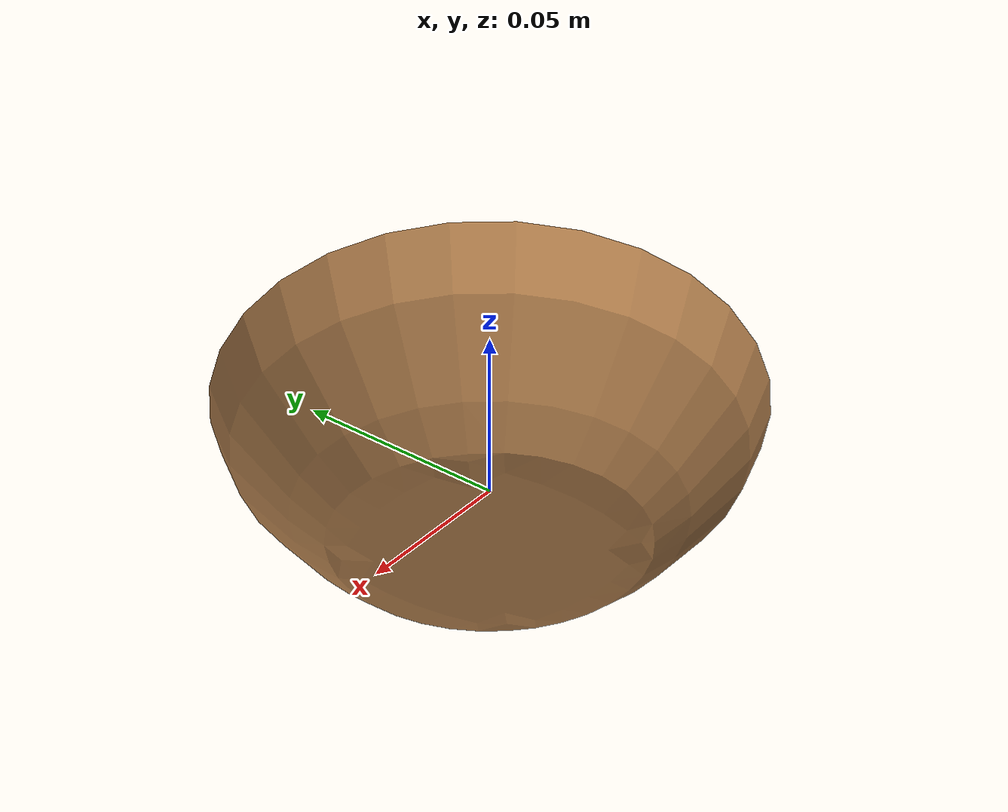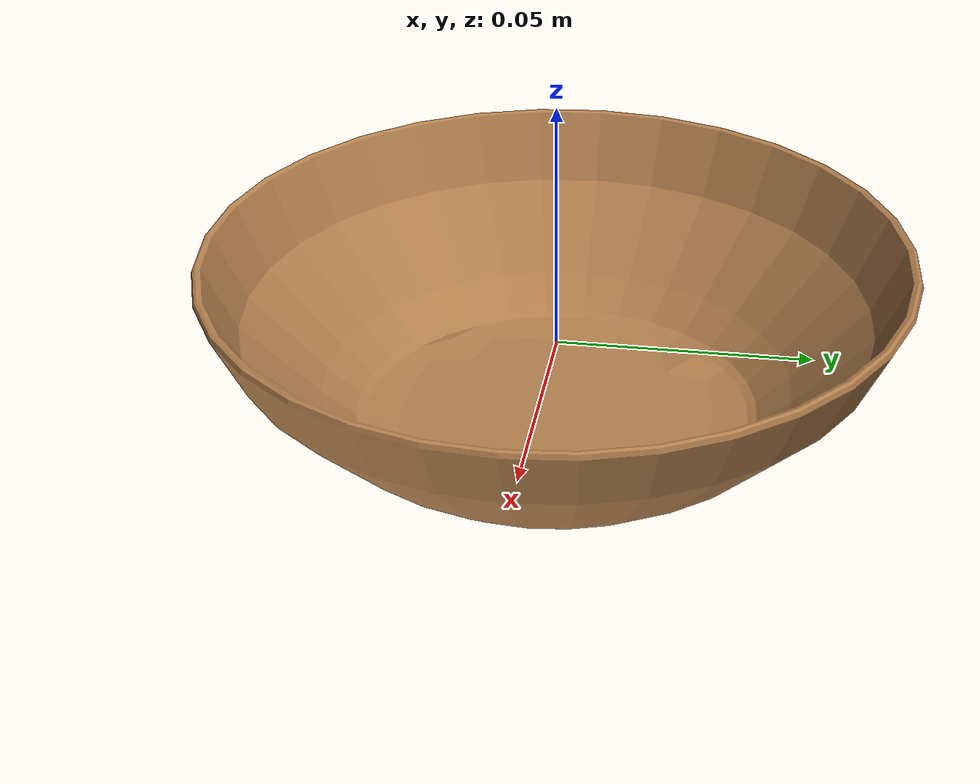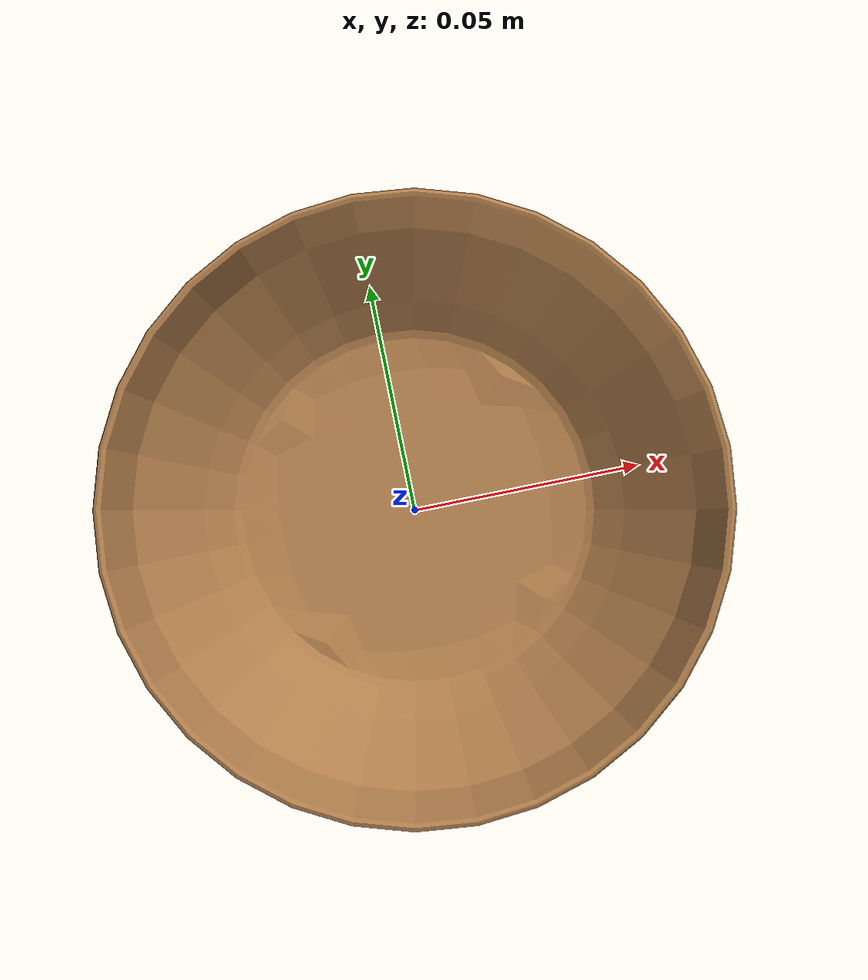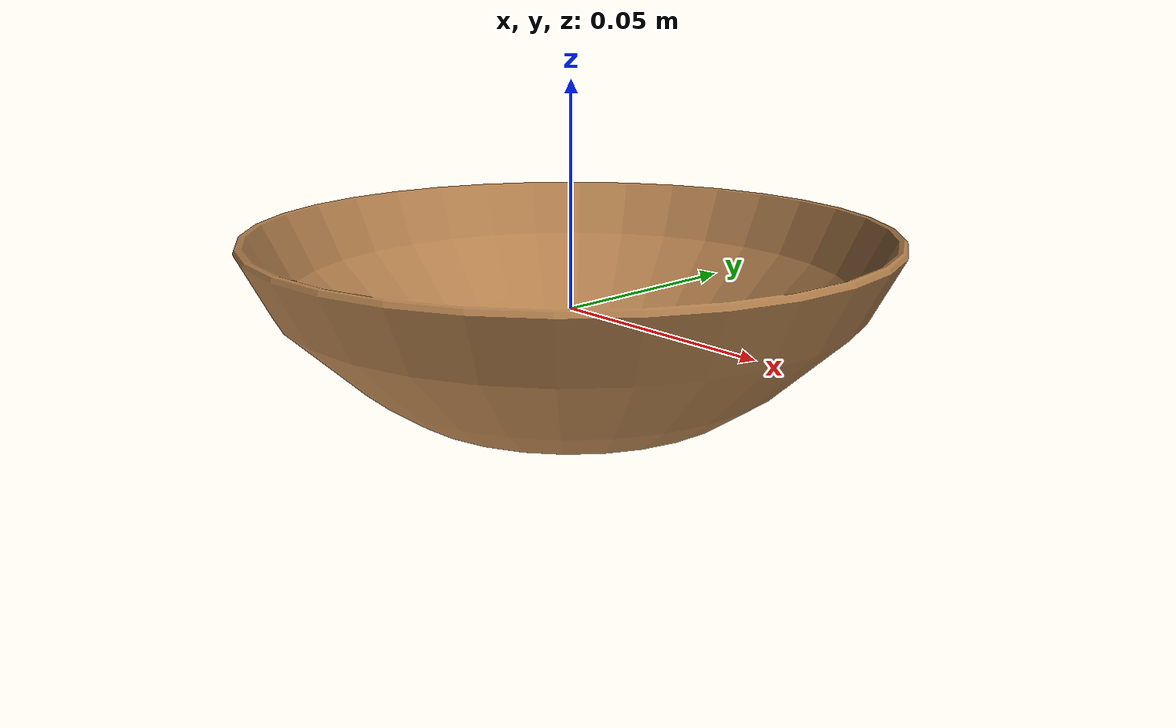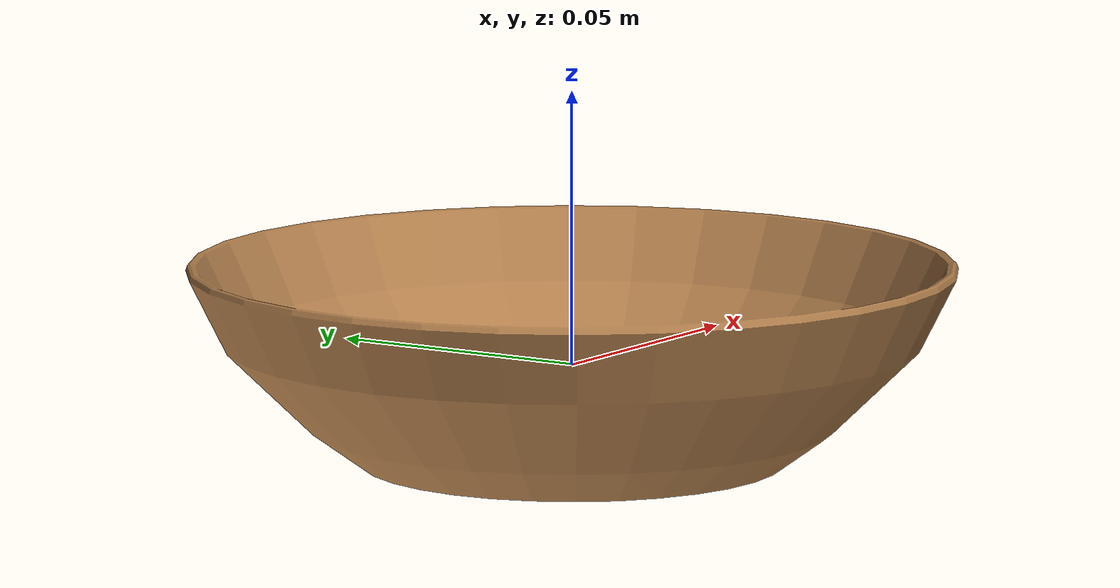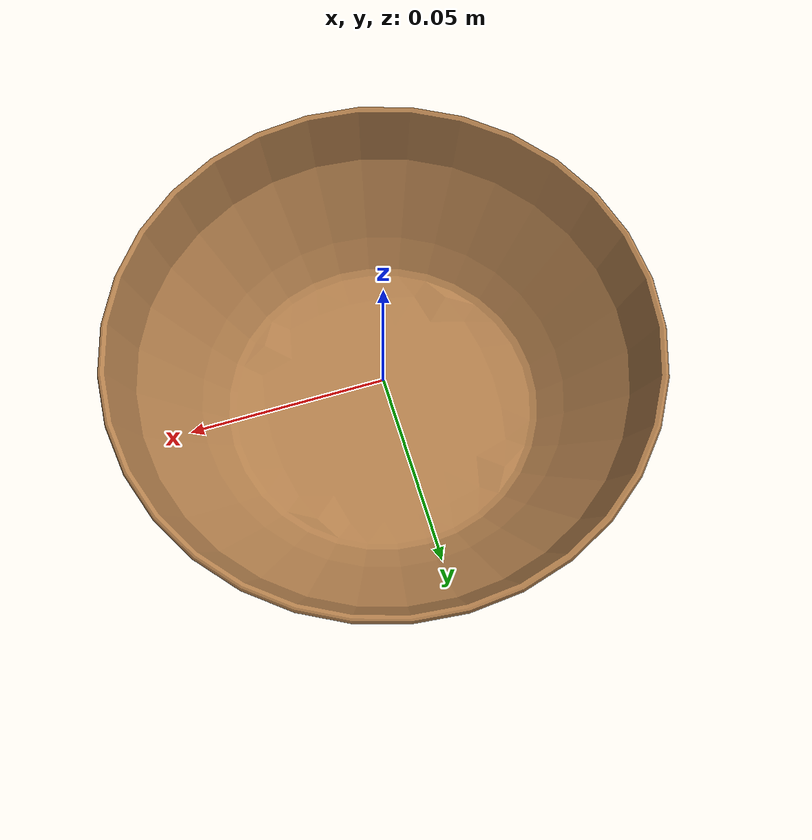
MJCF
<mujoco model="bowl_22">
  <asset>
    <mesh file="visual/model_normalized_0.obj" name="model_normalized_0_vis" scale="0.13999999999999996 0.13999999999999996 0.13999999999999996" refquat="1.0 0.0 0.0 0.0"/>
    <mesh file="collision/model_normalized_collision_22.obj" name="model_normalized_collision_22._coll" scale="0.13999999999999996 0.13999999999999996 0.13999999999999996" refquat="1.0 0.0 0.0 0.0"/>
    <mesh file="collision/model_normalized_collision_23.obj" name="model_normalized_collision_23._coll" scale="0.13999999999999996 0.13999999999999996 0.13999999999999996" refquat="1.0 0.0 0.0 0.0"/>
    <mesh file="collision/model_normalized_collision_21.obj" name="model_normalized_collision_21._coll" scale="0.13999999999999996 0.13999999999999996 0.13999999999999996" refquat="1.0 0.0 0.0 0.0"/>
    <mesh file="collision/model_normalized_collision_20.obj" name="model_normalized_collision_20._coll" scale="0.13999999999999996 0.13999999999999996 0.13999999999999996" refquat="1.0 0.0 0.0 0.0"/>
    <mesh file="collision/model_normalized_collision_24.obj" name="model_normalized_collision_24._coll" scale="0.13999999999999996 0.13999999999999996 0.13999999999999996" refquat="1.0 0.0 0.0 0.0"/>
    <mesh file="collision/model_normalized_collision_30.obj" name="model_normalized_collision_30._coll" scale="0.13999999999999996 0.13999999999999996 0.13999999999999996" refquat="1.0 0.0 0.0 0.0"/>
    <mesh file="collision/model_normalized_collision_18.obj" name="model_normalized_collision_18._coll" scale="0.13999999999999996 0.13999999999999996 0.13999999999999996" refquat="1.0 0.0 0.0 0.0"/>
    <mesh file="collision/model_normalized_collision_19.obj" name="model_normalized_collision_19._coll" scale="0.13999999999999996 0.13999999999999996 0.13999999999999996" refquat="1.0 0.0 0.0 0.0"/>
    <mesh file="collision/model_normalized_collision_31.obj" name="model_normalized_collision_31._coll" scale="0.13999999999999996 0.13999999999999996 0.13999999999999996" refquat="1.0 0.0 0.0 0.0"/>
    <mesh file="collision/model_normalized_collision_25.obj" name="model_normalized_collision_25._coll" scale="0.13999999999999996 0.13999999999999996 0.13999999999999996" refquat="1.0 0.0 0.0 0.0"/>
    <mesh file="collision/model_normalized_collision_27.obj" name="model_normalized_collision_27._coll" scale="0.13999999999999996 0.13999999999999996 0.13999999999999996" refquat="1.0 0.0 0.0 0.0"/>
    <mesh file="collision/model_normalized_collision_26.obj" name="model_normalized_collision_26._coll" scale="0.13999999999999996 0.13999999999999996 0.13999999999999996" refquat="1.0 0.0 0.0 0.0"/>
    <mesh file="collision/model_normalized_collision_9.obj" name="model_normalized_collision_9._coll" scale="0.13999999999999996 0.13999999999999996 0.13999999999999996" refquat="1.0 0.0 0.0 0.0"/>
    <mesh file="collision/model_normalized_collision_8.obj" name="model_normalized_collision_8._coll" scale="0.13999999999999996 0.13999999999999996 0.13999999999999996" refquat="1.0 0.0 0.0 0.0"/>
    <mesh file="collision/model_normalized_collision_6.obj" name="model_normalized_collision_6._coll" scale="0.13999999999999996 0.13999999999999996 0.13999999999999996" refquat="1.0 0.0 0.0 0.0"/>
    <mesh file="collision/model_normalized_collision_7.obj" name="model_normalized_collision_7._coll" scale="0.13999999999999996 0.13999999999999996 0.13999999999999996" refquat="1.0 0.0 0.0 0.0"/>
    <mesh file="collision/model_normalized_collision_5.obj" name="model_normalized_collision_5._coll" scale="0.13999999999999996 0.13999999999999996 0.13999999999999996" refquat="1.0 0.0 0.0 0.0"/>
    <mesh file="collision/model_normalized_collision_4.obj" name="model_normalized_collision_4._coll" scale="0.13999999999999996 0.13999999999999996 0.13999999999999996" refquat="1.0 0.0 0.0 0.0"/>
    <mesh file="collision/model_normalized_collision_0.obj" name="model_normalized_collision_0._coll" scale="0.13999999999999996 0.13999999999999996 0.13999999999999996" refquat="1.0 0.0 0.0 0.0"/>
    <mesh file="collision/model_normalized_collision_1.obj" name="model_normalized_collision_1._coll" scale="0.13999999999999996 0.13999999999999996 0.13999999999999996" refquat="1.0 0.0 0.0 0.0"/>
    <mesh file="collision/model_normalized_collision_3.obj" name="model_normalized_collision_3._coll" scale="0.13999999999999996 0.13999999999999996 0.13999999999999996" refquat="1.0 0.0 0.0 0.0"/>
    <mesh file="collision/model_normalized_collision_2.obj" name="model_normalized_collision_2._coll" scale="0.13999999999999996 0.13999999999999996 0.13999999999999996" refquat="1.0 0.0 0.0 0.0"/>
    <mesh file="collision/model_normalized_collision_17.obj" name="model_normalized_collision_17._coll" scale="0.13999999999999996 0.13999999999999996 0.13999999999999996" refquat="1.0 0.0 0.0 0.0"/>
    <mesh file="collision/model_normalized_collision_16.obj" name="model_normalized_collision_16._coll" scale="0.13999999999999996 0.13999999999999996 0.13999999999999996" refquat="1.0 0.0 0.0 0.0"/>
    <mesh file="collision/model_normalized_collision_28.obj" name="model_normalized_collision_28._coll" scale="0.13999999999999996 0.13999999999999996 0.13999999999999996" refquat="1.0 0.0 0.0 0.0"/>
    <mesh file="collision/model_normalized_collision_14.obj" name="model_normalized_collision_14._coll" scale="0.13999999999999996 0.13999999999999996 0.13999999999999996" refquat="1.0 0.0 0.0 0.0"/>
    <mesh file="collision/model_normalized_collision_15.obj" name="model_normalized_collision_15._coll" scale="0.13999999999999996 0.13999999999999996 0.13999999999999996" refquat="1.0 0.0 0.0 0.0"/>
    <mesh file="collision/model_normalized_collision_29.obj" name="model_normalized_collision_29._coll" scale="0.13999999999999996 0.13999999999999996 0.13999999999999996" refquat="1.0 0.0 0.0 0.0"/>
    <mesh file="collision/model_normalized_collision_11.obj" name="model_normalized_collision_11._coll" scale="0.13999999999999996 0.13999999999999996 0.13999999999999996" refquat="1.0 0.0 0.0 0.0"/>
    <mesh file="collision/model_normalized_collision_10.obj" name="model_normalized_collision_10._coll" scale="0.13999999999999996 0.13999999999999996 0.13999999999999996" refquat="1.0 0.0 0.0 0.0"/>
    <mesh file="collision/model_normalized_collision_12.obj" name="model_normalized_collision_12._coll" scale="0.13999999999999996 0.13999999999999996 0.13999999999999996" refquat="1.0 0.0 0.0 0.0"/>
    <mesh file="collision/model_normalized_collision_13.obj" name="model_normalized_collision_13._coll" scale="0.13999999999999996 0.13999999999999996 0.13999999999999996" refquat="1.0 0.0 0.0 0.0"/>
    <texture type="2d" name="image0" file="visual/image0.png"/>
    <material name="Wood" texture="image0" specular="0.5" shininess="0.25"/>
  </asset>
  <worldbody>
  <body>
      <body name="object">
        <geom solimp="0.998 0.998 0.001" solref="0.001 1" density="100" friction="0.95 0.3 0.1" type="mesh" mesh="model_normalized_0_vis" conaffinity="0" contype="0" group="1" material="Wood"/>
        <geom solimp="0.998 0.998 0.001" solref="0.001 1" density="100" friction="0.95 0.3 0.1" type="mesh" mesh="model_normalized_collision_22._coll" group="0" rgba="0.8 0.8 0.8 0.0"/>
        <geom solimp="0.998 0.998 0.001" solref="0.001 1" density="100" friction="0.95 0.3 0.1" type="mesh" mesh="model_normalized_collision_23._coll" group="0" rgba="0.8 0.8 0.8 0.0"/>
        <geom solimp="0.998 0.998 0.001" solref="0.001 1" density="100" friction="0.95 0.3 0.1" type="mesh" mesh="model_normalized_collision_21._coll" group="0" rgba="0.8 0.8 0.8 0.0"/>
        <geom solimp="0.998 0.998 0.001" solref="0.001 1" density="100" friction="0.95 0.3 0.1" type="mesh" mesh="model_normalized_collision_20._coll" group="0" rgba="0.8 0.8 0.8 0.0"/>
        <geom solimp="0.998 0.998 0.001" solref="0.001 1" density="100" friction="0.95 0.3 0.1" type="mesh" mesh="model_normalized_collision_24._coll" group="0" rgba="0.8 0.8 0.8 0.0"/>
        <geom solimp="0.998 0.998 0.001" solref="0.001 1" density="100" friction="0.95 0.3 0.1" type="mesh" mesh="model_normalized_collision_30._coll" group="0" rgba="0.8 0.8 0.8 0.0"/>
        <geom solimp="0.998 0.998 0.001" solref="0.001 1" density="100" friction="0.95 0.3 0.1" type="mesh" mesh="model_normalized_collision_18._coll" group="0" rgba="0.8 0.8 0.8 0.0"/>
        <geom solimp="0.998 0.998 0.001" solref="0.001 1" density="100" friction="0.95 0.3 0.1" type="mesh" mesh="model_normalized_collision_19._coll" group="0" rgba="0.8 0.8 0.8 0.0"/>
        <geom solimp="0.998 0.998 0.001" solref="0.001 1" density="100" friction="0.95 0.3 0.1" type="mesh" mesh="model_normalized_collision_31._coll" group="0" rgba="0.8 0.8 0.8 0.0"/>
        <geom solimp="0.998 0.998 0.001" solref="0.001 1" density="100" friction="0.95 0.3 0.1" type="mesh" mesh="model_normalized_collision_25._coll" group="0" rgba="0.8 0.8 0.8 0.0"/>
        <geom solimp="0.998 0.998 0.001" solref="0.001 1" density="100" friction="0.95 0.3 0.1" type="mesh" mesh="model_normalized_collision_27._coll" group="0" rgba="0.8 0.8 0.8 0.0"/>
        <geom solimp="0.998 0.998 0.001" solref="0.001 1" density="100" friction="0.95 0.3 0.1" type="mesh" mesh="model_normalized_collision_26._coll" group="0" rgba="0.8 0.8 0.8 0.0"/>
        <geom solimp="0.998 0.998 0.001" solref="0.001 1" density="100" friction="0.95 0.3 0.1" type="mesh" mesh="model_normalized_collision_9._coll" group="0" rgba="0.8 0.8 0.8 0.0"/>
        <geom solimp="0.998 0.998 0.001" solref="0.001 1" density="100" friction="0.95 0.3 0.1" type="mesh" mesh="model_normalized_collision_8._coll" group="0" rgba="0.8 0.8 0.8 0.0"/>
        <geom solimp="0.998 0.998 0.001" solref="0.001 1" density="100" friction="0.95 0.3 0.1" type="mesh" mesh="model_normalized_collision_6._coll" group="0" rgba="0.8 0.8 0.8 0.0"/>
        <geom solimp="0.998 0.998 0.001" solref="0.001 1" density="100" friction="0.95 0.3 0.1" type="mesh" mesh="model_normalized_collision_7._coll" group="0" rgba="0.8 0.8 0.8 0.0"/>
        <geom solimp="0.998 0.998 0.001" solref="0.001 1" density="100" friction="0.95 0.3 0.1" type="mesh" mesh="model_normalized_collision_5._coll" group="0" rgba="0.8 0.8 0.8 0.0"/>
        <geom solimp="0.998 0.998 0.001" solref="0.001 1" density="100" friction="0.95 0.3 0.1" type="mesh" mesh="model_normalized_collision_4._coll" group="0" rgba="0.8 0.8 0.8 0.0"/>
        <geom solimp="0.998 0.998 0.001" solref="0.001 1" density="100" friction="0.95 0.3 0.1" type="mesh" mesh="model_normalized_collision_0._coll" group="0" rgba="0.8 0.8 0.8 0.0"/>
        <geom solimp="0.998 0.998 0.001" solref="0.001 1" density="100" friction="0.95 0.3 0.1" type="mesh" mesh="model_normalized_collision_1._coll" group="0" rgba="0.8 0.8 0.8 0.0"/>
        <geom solimp="0.998 0.998 0.001" solref="0.001 1" density="100" friction="0.95 0.3 0.1" type="mesh" mesh="model_normalized_collision_3._coll" group="0" rgba="0.8 0.8 0.8 0.0"/>
        <geom solimp="0.998 0.998 0.001" solref="0.001 1" density="100" friction="0.95 0.3 0.1" type="mesh" mesh="model_normalized_collision_2._coll" group="0" rgba="0.8 0.8 0.8 0.0"/>
        <geom solimp="0.998 0.998 0.001" solref="0.001 1" density="100" friction="0.95 0.3 0.1" type="mesh" mesh="model_normalized_collision_17._coll" group="0" rgba="0.8 0.8 0.8 0.0"/>
        <geom solimp="0.998 0.998 0.001" solref="0.001 1" density="100" friction="0.95 0.3 0.1" type="mesh" mesh="model_normalized_collision_16._coll" group="0" rgba="0.8 0.8 0.8 0.0"/>
        <geom solimp="0.998 0.998 0.001" solref="0.001 1" density="100" friction="0.95 0.3 0.1" type="mesh" mesh="model_normalized_collision_28._coll" group="0" rgba="0.8 0.8 0.8 0.0"/>
        <geom solimp="0.998 0.998 0.001" solref="0.001 1" density="100" friction="0.95 0.3 0.1" type="mesh" mesh="model_normalized_collision_14._coll" group="0" rgba="0.8 0.8 0.8 0.0"/>
        <geom solimp="0.998 0.998 0.001" solref="0.001 1" density="100" friction="0.95 0.3 0.1" type="mesh" mesh="model_normalized_collision_15._coll" group="0" rgba="0.8 0.8 0.8 0.0"/>
        <geom solimp="0.998 0.998 0.001" solref="0.001 1" density="100" friction="0.95 0.3 0.1" type="mesh" mesh="model_normalized_collision_29._coll" group="0" rgba="0.8 0.8 0.8 0.0"/>
        <geom solimp="0.998 0.998 0.001" solref="0.001 1" density="100" friction="0.95 0.3 0.1" type="mesh" mesh="model_normalized_collision_11._coll" group="0" rgba="0.8 0.8 0.8 0.0"/>
        <geom solimp="0.998 0.998 0.001" solref="0.001 1" density="100" friction="0.95 0.3 0.1" type="mesh" mesh="model_normalized_collision_10._coll" group="0" rgba="0.8 0.8 0.8 0.0"/>
        <geom solimp="0.998 0.998 0.001" solref="0.001 1" density="100" friction="0.95 0.3 0.1" type="mesh" mesh="model_normalized_collision_12._coll" group="0" rgba="0.8 0.8 0.8 0.0"/>
        <geom solimp="0.998 0.998 0.001" solref="0.001 1" density="100" friction="0.95 0.3 0.1" type="mesh" mesh="model_normalized_collision_13._coll" group="0" rgba="0.8 0.8 0.8 0.0"/>
      </body>
      <site rgba="0 0 0 0" size="0.005" pos="6.999999996315507e-10 2.8000000024119832e-09 -0.0186296474" name="bottom_site"/>
      <site rgba="0 0 0 0" size="0.005" pos="6.999999996315507e-10 2.8000000024119832e-09 0.018629661399999994" name="top_site"/>
      <site rgba="0 0 0 0" size="0.005" pos="0.06917195319999998 0.06917196859999998 6.9999999982583975e-09" name="horizontal_radius_site"/>
    </body>
    </worldbody>
</mujoco>
